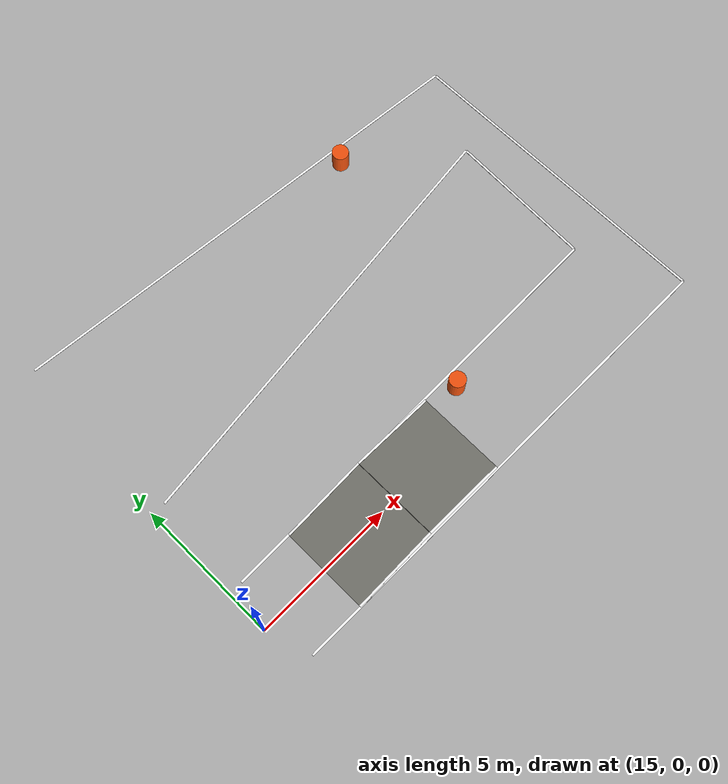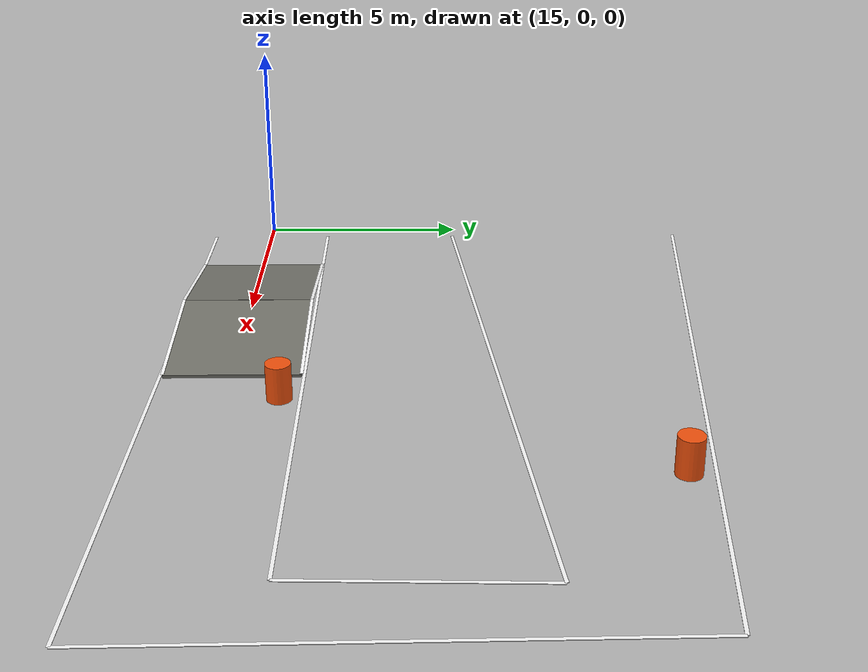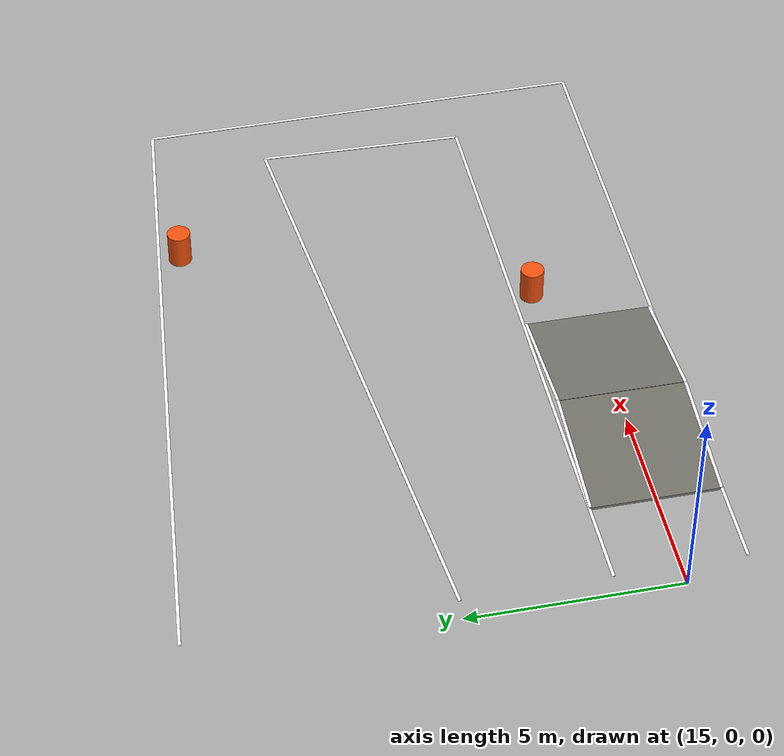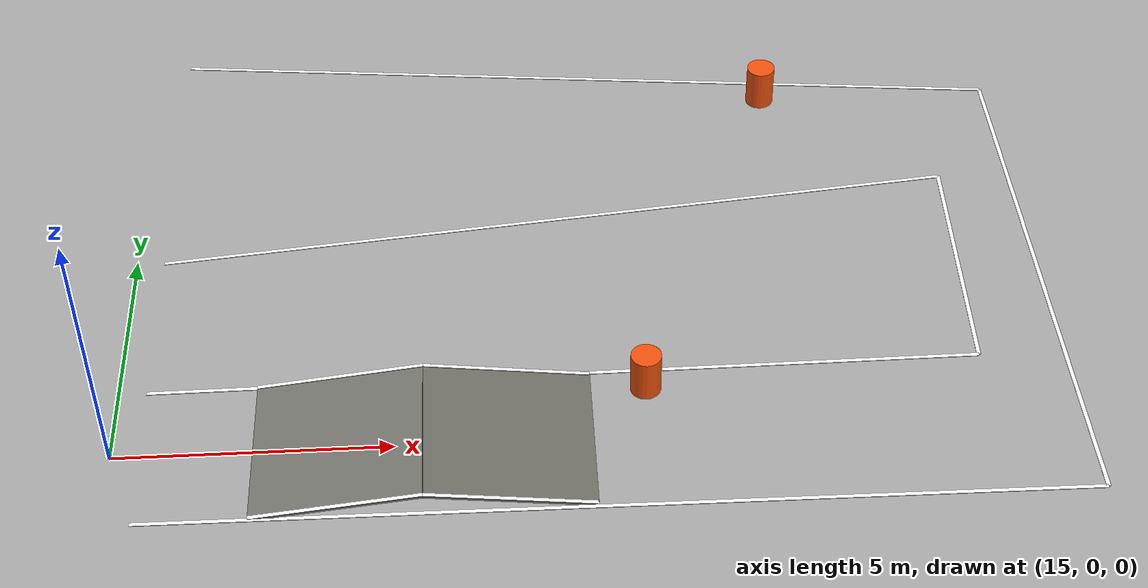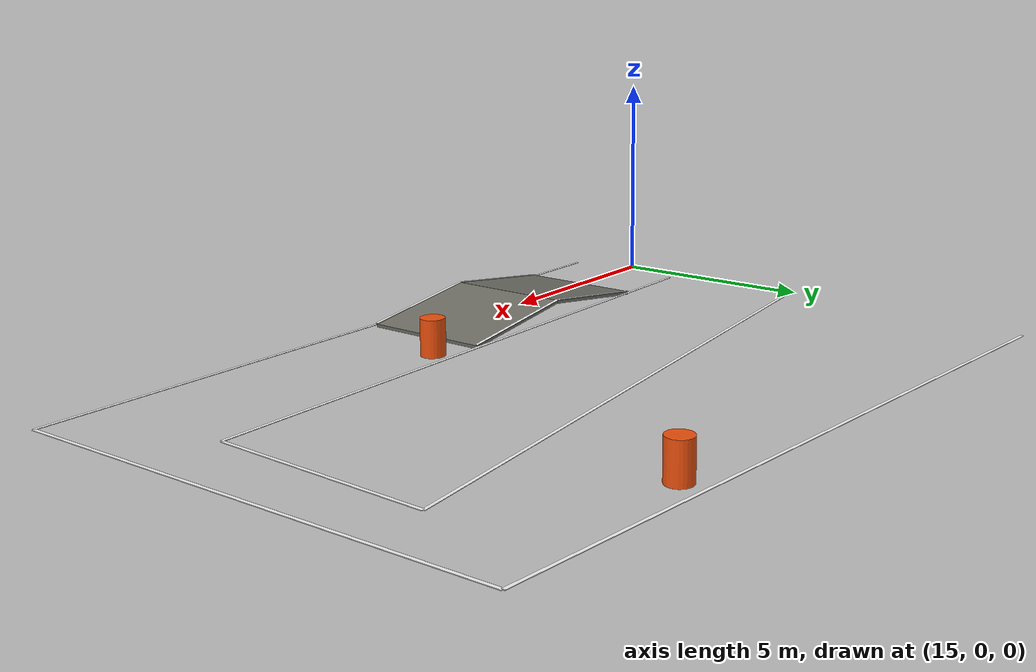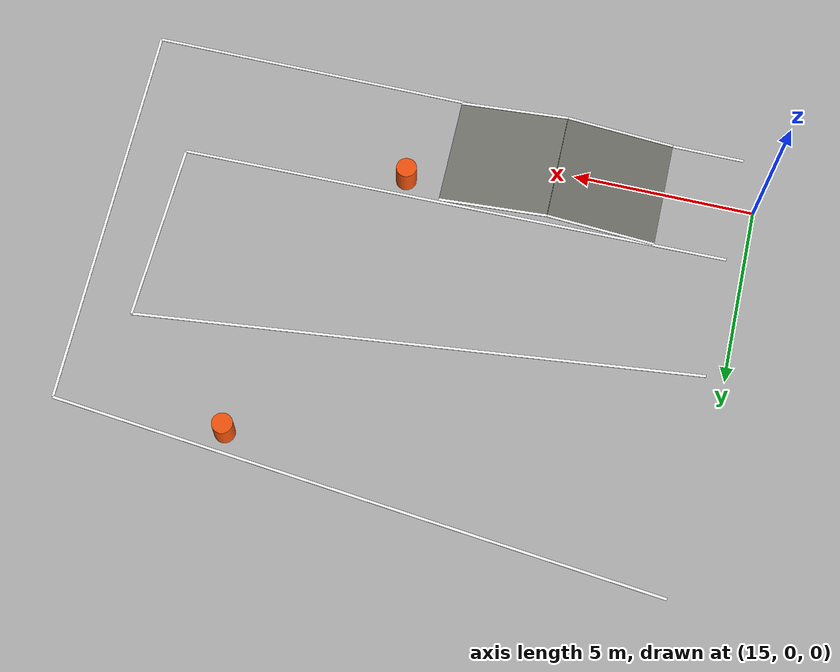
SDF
<sdf version="1.9">
 <world name="igvc_competition">
  <model name="left_boundary_1">
   <static>1</static>
   <pose>23.0911 1.5799 0.011 0 0 0.007359</pose>
   <link name="link">
    <visual name="visual">
     <geometry><box><size>15.1825 0.0762 0.012</size></box></geometry>
     <material>
      <ambient>0.98 0.98 0.98 1</ambient>
      <diffuse>0.98 0.98 0.98 1</diffuse>
      <specular>0.05 0.05 0.05 1</specular>
      <emissive>0.9 0.9 0.9 1</emissive>
     </material>
    </visual>
   </link>
  </model>
  <model name="right_boundary_1">
   <static>1</static>
   <pose>23.9089 -1.5799 0.011 0 0 -0.006643</pose>
   <link name="link">
    <visual name="visual">
     <geometry><box><size>16.8182 0.0762 0.012</size></box></geometry>
     <material>
      <ambient>0.98 0.98 0.98 1</ambient>
      <diffuse>0.98 0.98 0.98 1</diffuse>
      <specular>0.05 0.05 0.05 1</specular>
      <emissive>0.9 0.9 0.9 1</emissive>
     </material>
    </visual>
   </link>
  </model>
  <model name="left_boundary_2">
   <static>1</static>
   <pose>30.7503 4.1363 0.011 0 0 1.543547</pose>
   <link name="link">
    <visual name="visual">
     <geometry><box><size>5.0030 0.0762 0.012</size></box></geometry>
     <material>
      <ambient>0.98 0.98 0.98 1</ambient>
      <diffuse>0.98 0.98 0.98 1</diffuse>
      <specular>0.05 0.05 0.05 1</specular>
      <emissive>0.9 0.9 0.9 1</emissive>
     </material>
    </visual>
   </link>
  </model>
  <model name="right_boundary_2">
   <static>1</static>
   <pose>32.2497 3.8637 0.011 0 0 1.583189</pose>
   <link name="link">
    <visual name="visual">
     <geometry><box><size>10.9997 0.0762 0.012</size></box></geometry>
     <material>
      <ambient>0.98 0.98 0.98 1</ambient>
      <diffuse>0.98 0.98 0.98 1</diffuse>
      <specular>0.05 0.05 0.05 1</specular>
      <emissive>0.9 0.9 0.9 1</emissive>
     </material>
    </visual>
   </link>
  </model>
  <model name="left_boundary_3">
   <static>1</static>
   <pose>23.1592 5.7944 0.011 0 0 -3.032042</pose>
   <link name="link">
    <visual name="visual">
     <geometry><box><size>15.4108 0.0762 0.012</size></box></geometry>
     <material>
      <ambient>0.98 0.98 0.98 1</ambient>
      <diffuse>0.98 0.98 0.98 1</diffuse>
      <specular>0.05 0.05 0.05 1</specular>
      <emissive>0.9 0.9 0.9 1</emissive>
     </material>
    </visual>
   </link>
  </model>
  <model name="right_boundary_3">
   <static>1</static>
   <pose>23.8408 10.2056 0.011 0 0 3.040931</pose>
   <link name="link">
    <visual name="visual">
     <geometry><box><size>16.7664 0.0762 0.012</size></box></geometry>
     <material>
      <ambient>0.98 0.98 0.98 1</ambient>
      <diffuse>0.98 0.98 0.98 1</diffuse>
      <specular>0.05 0.05 0.05 1</specular>
      <emissive>0.9 0.9 0.9 1</emissive>
     </material>
    </visual>
   </link>
  </model>
  <model name="ramp_exit_barrel">
   <static>1</static>
   <pose>24.5000 1.1500 0 0 0 0</pose>
   <link name="link">
    <collision name="collision">
     <pose>0 0 0.4250 0 0 0</pose>
     <geometry><cylinder><radius>0.2800</radius><length>0.8500</length></cylinder></geometry>
    </collision>
    <visual name="visual">
     <pose>0 0 0.4250 0 0 0</pose>
     <geometry><cylinder><radius>0.2800</radius><length>0.8500</length></cylinder></geometry>
     <material>
      <ambient>0.95 0.32 0.05 1.0</ambient>
      <diffuse>0.95 0.32 0.05 1.0</diffuse>
      <specular>0.05 0.05 0.05 1</specular>
     </material>
    </visual>
   </link>
  </model>
  <model name="gps_field_gate_barrel">
   <static>1</static>
   <pose>27.5000 9.3000 0 0 0 0</pose>
   <link name="link">
    <collision name="collision">
     <pose>0 0 0.4250 0 0 0</pose>
     <geometry><cylinder><radius>0.2800</radius><length>0.8500</length></cylinder></geometry>
    </collision>
    <visual name="visual">
     <pose>0 0 0.4250 0 0 0</pose>
     <geometry><cylinder><radius>0.2800</radius><length>0.8500</length></cylinder></geometry>
     <material>
      <ambient>0.95 0.32 0.05 1.0</ambient>
      <diffuse>0.95 0.32 0.05 1.0</diffuse>
      <specular>0.05 0.05 0.05 1</specular>
     </material>
    </visual>
   </link>
  </model>
  <model name="official_grade_ramp_up">
   <static>1</static>
   <pose>19.0000 0.0000 0.2000 0.000000 -0.132552 0.000000</pose>
   <link name="link">
    <collision name="collision"><geometry><box><size>3.0265 3.0480 0.0800</size></box></geometry></collision>
    <visual name="visual">
     <geometry><box><size>3.0265 3.0480 0.0800</size></box></geometry>
     <material>
      <ambient>0.45 0.45 0.42 1.0</ambient>
      <diffuse>0.45 0.45 0.42 1.0</diffuse>
      <specular>0.05 0.05 0.05 1</specular>
     </material>
    </visual>
   </link>
  </model>
  <model name="official_grade_ramp_down">
   <static>1</static>
   <pose>22.0000 0.0000 0.2000 0.000000 0.132552 0.000000</pose>
   <link name="link">
    <collision name="collision"><geometry><box><size>3.0265 3.0480 0.0800</size></box></geometry></collision>
    <visual name="visual">
     <geometry><box><size>3.0265 3.0480 0.0800</size></box></geometry>
     <material>
      <ambient>0.45 0.45 0.42 1.0</ambient>
      <diffuse>0.45 0.45 0.42 1.0</diffuse>
      <specular>0.05 0.05 0.05 1</specular>
     </material>
    </visual>
   </link>
  </model>
  <model name="official_grade_ramp_up_left_white_line">
   <static>1</static>
   <pose>19.0000 1.5240 0.2520 0.000000 -0.132552 0.000000</pose>
   <link name="link">
    <visual name="visual">
     <geometry><box><size>3.0265 0.0762 0.012</size></box></geometry>
     <material>
      <ambient>0.98 0.98 0.98 1</ambient>
      <diffuse>0.98 0.98 0.98 1</diffuse>
      <specular>0.05 0.05 0.05 1</specular>
      <emissive>0.9 0.9 0.9 1</emissive>
     </material>
    </visual>
   </link>
  </model>
  <model name="official_grade_ramp_up_right_white_line">
   <static>1</static>
   <pose>19.0000 -1.5240 0.2520 0.000000 -0.132552 0.000000</pose>
   <link name="link">
    <visual name="visual">
     <geometry><box><size>3.0265 0.0762 0.012</size></box></geometry>
     <material>
      <ambient>0.98 0.98 0.98 1</ambient>
      <diffuse>0.98 0.98 0.98 1</diffuse>
      <specular>0.05 0.05 0.05 1</specular>
      <emissive>0.9 0.9 0.9 1</emissive>
     </material>
    </visual>
   </link>
  </model>
  <model name="official_grade_ramp_down_left_white_line">
   <static>1</static>
   <pose>22.0000 1.5240 0.2520 0.000000 0.132552 0.000000</pose>
   <link name="link">
    <visual name="visual">
     <geometry><box><size>3.0265 0.0762 0.012</size></box></geometry>
     <material>
      <ambient>0.98 0.98 0.98 1</ambient>
      <diffuse>0.98 0.98 0.98 1</diffuse>
      <specular>0.05 0.05 0.05 1</specular>
      <emissive>0.9 0.9 0.9 1</emissive>
     </material>
    </visual>
   </link>
  </model>
  <model name="official_grade_ramp_down_right_white_line">
   <static>1</static>
   <pose>22.0000 -1.5240 0.2520 0.000000 0.132552 0.000000</pose>
   <link name="link">
    <visual name="visual">
     <geometry><box><size>3.0265 0.0762 0.012</size></box></geometry>
     <material>
      <ambient>0.98 0.98 0.98 1</ambient>
      <diffuse>0.98 0.98 0.98 1</diffuse>
      <specular>0.05 0.05 0.05 1</specular>
      <emissive>0.9 0.9 0.9 1</emissive>
     </material>
    </visual>
   </link>
  </model>
 </world>
</sdf>
